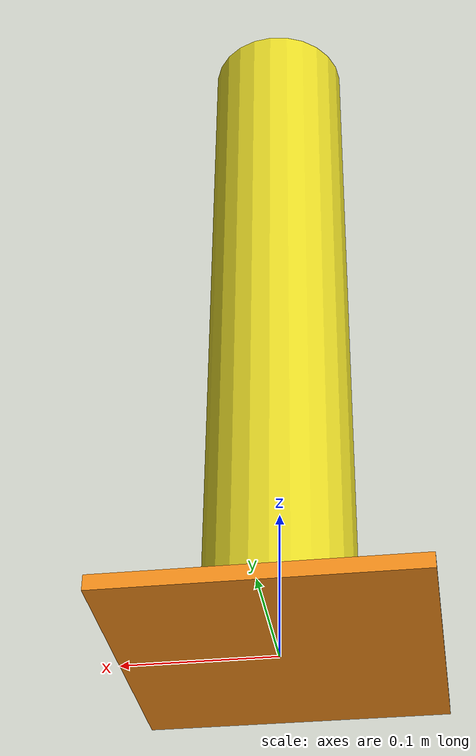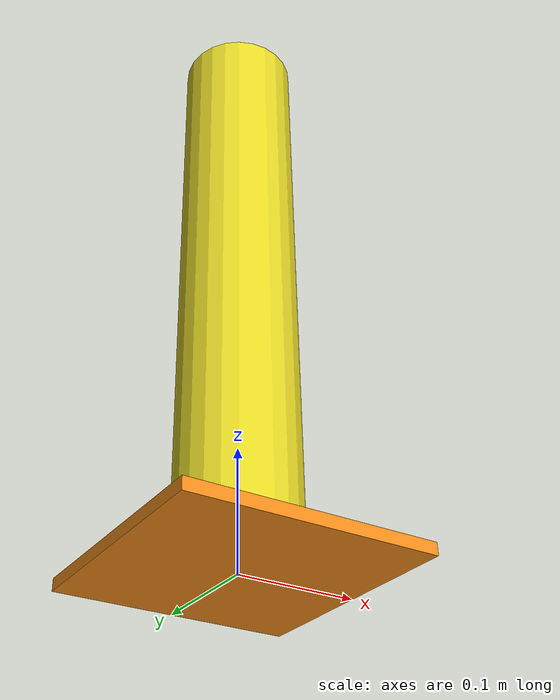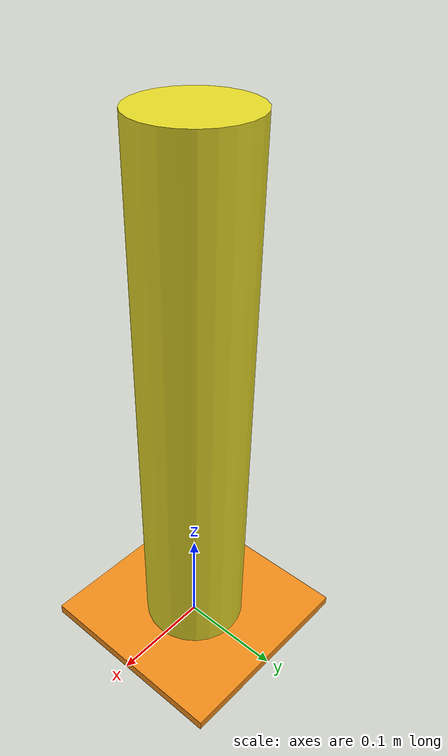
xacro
<?xml version="1.0"?>
<robot xmlns:xacro="http://www.ros.org/wiki/xacro">

    <xacro:property name="arm_base_length" value="0.2" />
    <xacro:property name="arm_base_width" value="0.2" />
    <xacro:property name="arm_base_height" value="0.01" />
    <xacro:property name="forearm_radius" value="0.05" />
    <xacro:property name="forearm_length" value="0.5" />

    <link name="arm_base_link">
        <visual>
            <geometry>
                <box size="${arm_base_length} ${arm_base_width} ${arm_base_height}" />
            </geometry>
            <origin xyz="0 0 ${arm_base_height / 2.0}" rpy="0 0 0" />
            <material name="orange" />
        </visual>
        <collision>
            <geometry>
                <box size="${arm_base_length} ${arm_base_width} ${arm_base_height}" />
            </geometry>
            <origin xyz="0 0 ${arm_base_height / 2.0}" rpy="0 0 0" />
        </collision>
        <xacro:box_inertia m="0.5" l="${2*arm_base_length}" w="${2*arm_base_width}" h="${2*arm_base_height}"
                           xyz="0 0 ${arm_base_height / 2.0}" rpy="0 0 0" />
    </link>

    <link name="forearm_link">
        <visual>
            <geometry>
                <cylinder radius="${forearm_radius}" length="${forearm_length}" />
            </geometry>
            <origin xyz="0 0 ${forearm_length/2.0}" rpy="0 0 0" />
            <material name="yellow" />
        </visual>
        <collision>
            <geometry>
                <cylinder radius="${forearm_radius}" length="${forearm_length}" />
            </geometry>
            <origin xyz="0 0 ${forearm_length/2.0}" rpy="0 0 0" />
        </collision>
        <xacro:cylinder_inertia m="0.3" r="${2*forearm_radius}" h="${2*forearm_length}"
                                xyz="0 0 ${forearm_length/2.0}" rpy="0 0 0" />
    </link>

    <joint name="arm_base_forearm_joint" type="revolute">
        <parent link="arm_base_link" />
        <child link="forearm_link" />
        <origin xyz="0 0 ${arm_base_height}" rpy="0 0 0" />
        <axis xyz="0 0 1" />
        <dynamics damping="1" friction="2"/>
        <limit lower="-3.14" upper="3.14" effort="500" velocity="1.0"/>
    </joint>

</robot>
